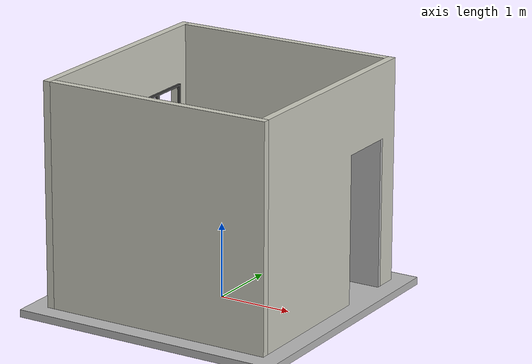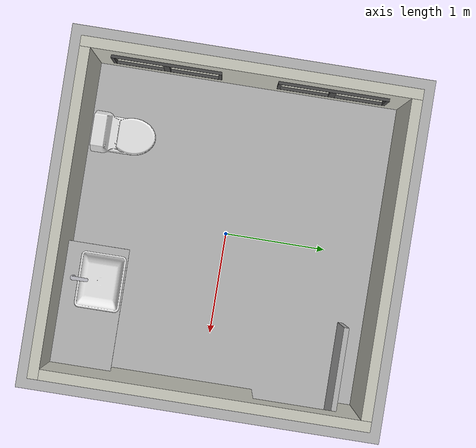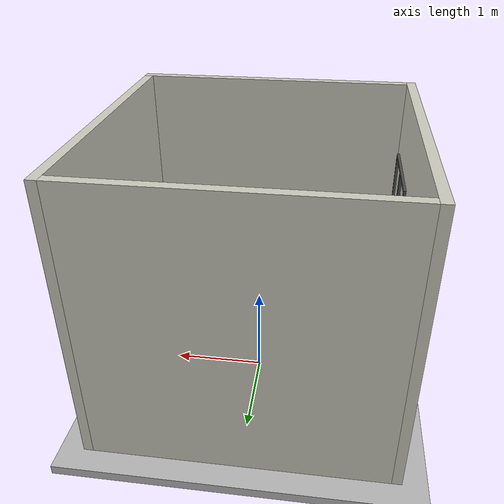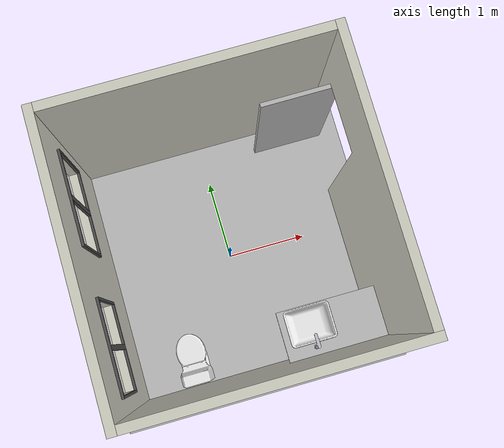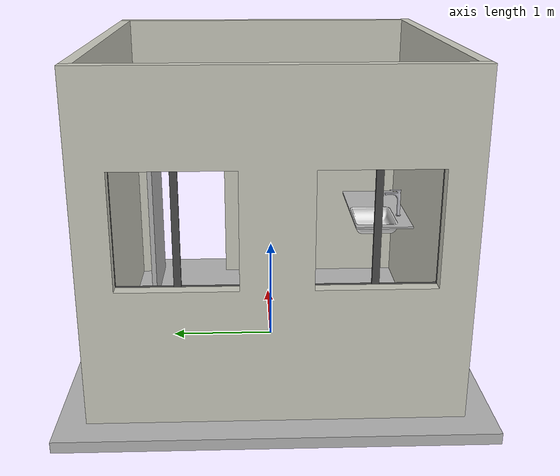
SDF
<sdf version="1.7">
 <world name="default">
  <plugin name="ros_link_attacher_plugin" filename="libgazebo_ros_link_attacher.so"/>
  <model name="floor">
   <static>1</static>
   <link name="link">
    <visual name="visual4"><geometry><box><size>15 15 0.1</size></box></geometry></visual>
    <collision name="collision4">
     <geometry><box><size>15 15 0.1</size></box></geometry>
     <surface><friction><ode><mu>1</mu><mu2>1</mu2></ode></friction></surface>
    </collision>
   </link>
  </model>
  <model name="ground_plane">
   <static>1</static>
   <link name="link">
    <collision name="collision">
     <geometry><plane><normal>0 0 1</normal><size>100 100</size></plane></geometry>
     <surface><friction><ode><mu>100</mu><mu2>50</mu2></ode></friction></surface>
    </collision>
    <visual name="visual">
     <cast_shadows>0</cast_shadows>
     <geometry><plane><normal>0 0 1</normal><size>100 100</size></plane></geometry>
     <material>
      <script><uri>file://media/materials/scripts/gazebo.material</uri><name>Gazebo/Grey</name></script>
     </material>
    </visual>
   </link>
  </model>
  <model name="cummod">
   <link name="link">
    <inertial>
     <mass>2000</mass>
     <inertia><ixx>1</ixx><ixy>0</ixy><ixz>0</ixz><iyy>1</iyy><iyz>0</iyz><izz>1</izz></inertia>
    </inertial>
    <collision name="colision1">
     <geometry><mesh><uri>model://cummod/meshes/cummod.dae</uri></mesh></geometry>
    </collision>
    <visual name="visual1">
     <cast_shadows>0</cast_shadows>
     <geometry><mesh><uri>model://cummod/meshes/cummod.dae</uri></mesh></geometry>
     <material>
      <script><name>Gazebo/White</name><uri>file://media/materials/scripts/gazebo.material</uri></script>
     </material>
    </visual>
   </link>
   <pose>-0.812974 -1.15199 0.05 -0 1e-06 3.14031</pose>
  </model>
  <physics type="ode">
   <ode>
    <solver>
     <type>quick</type>
     <iters>100</iters>
     <precon_iters>0</precon_iters>
     <sor>1</sor>
     <use_dynamic_moi_rescaling>0</use_dynamic_moi_rescaling>
    </solver>
    <constraints>
     <cfm>0</cfm>
     <erp>0.5</erp>
     <contact_max_correcting_vel>1000</contact_max_correcting_vel>
     <contact_surface_layer>0</contact_surface_layer>
    </constraints>
   </ode>
   <max_step_size>0.001</max_step_size>
   <real_time_factor>1</real_time_factor>
   <real_time_update_rate>1000</real_time_update_rate>
   <gravity>0.000000 0.000000 -9.810000</gravity>
  </physics>
  <gravity>0 0 -9.81</gravity>
  <magnetic_field>6e-06 2.3e-05 -4.2e-05</magnetic_field>
  <atmosphere type="adiabatic"/>
  <scene><ambient>0.4 0.4 0.4 1</ambient><background>0.7 0.7 0.7 1</background><shadows>1</shadows></scene>
  <spherical_coordinates>
   <surface_model>EARTH_WGS84</surface_model>
   <latitude_deg>0</latitude_deg>
   <longitude_deg>0</longitude_deg>
   <elevation>0</elevation>
   <heading_deg>0</heading_deg>
  </spherical_coordinates>
  <model name="artpark_world">
   <link name="wall_front_1">
    <inertial>
     <pose>0.046416 -0.013002 1.59722 0 -0 0</pose>
     <mass>27271.9</mass>
     <inertia>
      <ixx>67396.9</ixx>
      <ixy>814.855</ixy>
      <ixz>-982.378</ixz>
      <iyy>62674.9</iyy>
      <iyz>-178.815</iyz>
      <izz>87208.7</izz>
     </inertia>
    </inertial>
    <collision name="wall_front_1_collision">
     <geometry>
      <mesh>
       <scale>0.001 0.001 0.001</scale>
       <uri>/artpark_workspace/src/GigaRoboticsArtpark/artpark_world_description/meshes/base_link.stl</uri>
      </mesh>
     </geometry>
     <surface><friction><ode><mu>0.2</mu><mu2>0.2</mu2></ode></friction></surface>
    </collision>
    <collision name="wall_front_1_fixed_joint_lump__wall_right_1_collision_1">
     <pose>0 1.55 1.6 0 -0 0</pose>
     <geometry><box><size>3 0.1 3</size></box></geometry>
     <surface><friction><ode><mu>0.2</mu><mu2>0.2</mu2></ode></friction></surface>
     <origin rpy="0 0 0" xyz="1.5 -.05 0"/>
    </collision>
    <collision name="wall_front_1_fixed_joint_lump__wall_back_1_collision_2">
     <geometry>
      <mesh>
       <scale>0.001 0.001 0.001</scale>
       <uri>/artpark_workspace/src/GigaRoboticsArtpark/artpark_world_description/meshes/wall_back_1.stl</uri>
      </mesh>
     </geometry>
     <surface><friction><ode><mu>0.2</mu><mu2>0.2</mu2></ode></friction></surface>
    </collision>
    <collision name="wall_front_1_fixed_joint_lump__door_1_1_collision_3">
     <pose>1.15 1.275 1.1 0 -0 0</pose>
     <geometry><box><size>0.9 0.05 2</size></box></geometry>
     <surface><friction><ode><mu>0.2</mu><mu2>0.2</mu2></ode></friction></surface>
     <origin rpy="0 0 0" xyz="1.5 -.05 0"/>
    </collision>
    <collision name="wall_front_1_fixed_joint_lump__wall_left_1_collision_4">
     <pose>0.05 -1.55 1.6 0 -0 0</pose>
     <geometry><box><size>3.1 0.1 3</size></box></geometry>
     <surface><friction><ode><mu>0.2</mu><mu2>0.2</mu2></ode></friction></surface>
     <origin rpy="0 0 0" xyz="1.55 0.05 0"/>
    </collision>
    <collision name="wall_front_1_fixed_joint_lump__counter_1_collision_5">
     <geometry>
      <mesh>
       <scale>0.001 0.001 0.001</scale>
       <uri>/artpark_workspace/src/GigaRoboticsArtpark/artpark_world_description/meshes/counter_1.stl</uri>
      </mesh>
     </geometry>
     <surface><friction><ode><mu>0.2</mu><mu2>0.2</mu2></ode></friction></surface>
    </collision>
    <collision name="wall_front_1_fixed_joint_lump__sink_1_collision_6">
     <geometry>
      <mesh>
       <scale>0.001 0.001 0.001</scale>
       <uri>/artpark_workspace/src/GigaRoboticsArtpark/artpark_world_description/meshes/sink_1.stl</uri>
      </mesh>
     </geometry>
     <surface><friction><ode><mu>0.2</mu><mu2>0.2</mu2></ode></friction></surface>
    </collision>
    <collision name="wall_front_1_fixed_joint_lump__tap_1_collision_7">
     <geometry>
      <mesh>
       <scale>0.001 0.001 0.001</scale>
       <uri>/artpark_workspace/src/GigaRoboticsArtpark/artpark_world_description/meshes/tap_1.stl</uri>
      </mesh>
     </geometry>
     <surface><friction><ode><mu>0.2</mu><mu2>0.2</mu2></ode></friction></surface>
    </collision>
    <collision name="wall_front_1_fixed_joint_lump__window_frame1_1_collision_8">
     <geometry>
      <mesh>
       <scale>0.001 0.001 0.001</scale>
       <uri>/artpark_workspace/src/GigaRoboticsArtpark/artpark_world_description/meshes/window_frame1_1.stl</uri>
      </mesh>
     </geometry>
     <surface><friction><ode><mu>0.2</mu><mu2>0.2</mu2></ode></friction></surface>
    </collision>
    <collision name="wall_front_1_fixed_joint_lump__window_frame2_1_collision_9">
     <geometry>
      <mesh>
       <scale>0.001 0.001 0.001</scale>
       <uri>/artpark_workspace/src/GigaRoboticsArtpark/artpark_world_description/meshes/window_frame2_1.stl</uri>
      </mesh>
     </geometry>
     <surface><friction><ode><mu>0.2</mu><mu2>0.2</mu2></ode></friction></surface>
    </collision>
    <visual name="wall_front_1_visual">
     <geometry>
      <mesh>
       <scale>0.001 0.001 0.001</scale>
       <uri>/artpark_workspace/src/GigaRoboticsArtpark/artpark_world_description/meshes/base_link.stl</uri>
      </mesh>
     </geometry>
     <material>
      <script><name>Gazebo/PaintedWall</name><uri>file://media/materials/scripts/gazebo.material</uri></script>
     </material>
    </visual>
    <visual name="wall_front_1_fixed_joint_lump__wall_right_1_visual_1">
     <geometry>
      <mesh>
       <scale>0.001 0.001 0.001</scale>
       <uri>/artpark_workspace/src/GigaRoboticsArtpark/artpark_world_description/meshes/wall_right_1.stl</uri>
      </mesh>
     </geometry>
     <material>
      <script><name>Gazebo/PaintedWall</name><uri>file://media/materials/scripts/gazebo.material</uri></script>
     </material>
    </visual>
    <visual name="wall_front_1_fixed_joint_lump__wall_back_1_visual_2">
     <geometry>
      <mesh>
       <scale>0.001 0.001 0.001</scale>
       <uri>/artpark_workspace/src/GigaRoboticsArtpark/artpark_world_description/meshes/wall_back_1.stl</uri>
      </mesh>
     </geometry>
     <material>
      <script><name>Gazebo/PaintedWall</name><uri>file://media/materials/scripts/gazebo.material</uri></script>
     </material>
    </visual>
    <visual name="wall_front_1_fixed_joint_lump__door_1_1_visual_3">
     <geometry>
      <mesh>
       <scale>0.001 0.001 0.001</scale>
       <uri>/artpark_workspace/src/GigaRoboticsArtpark/artpark_world_description/meshes/door_1_1.stl</uri>
      </mesh>
     </geometry>
     <material>
      <script><name>Gazebo/PioneerBody</name><uri>file://media/materials/scripts/gazebo.material</uri></script>
     </material>
    </visual>
    <visual name="wall_front_1_fixed_joint_lump__wall_left_1_visual_4">
     <geometry>
      <mesh>
       <scale>0.001 0.001 0.001</scale>
       <uri>/artpark_workspace/src/GigaRoboticsArtpark/artpark_world_description/meshes/wall_left_1.stl</uri>
      </mesh>
     </geometry>
     <material>
      <script><name>Gazebo/PaintedWall</name><uri>file://media/materials/scripts/gazebo.material</uri></script>
     </material>
    </visual>
    <visual name="wall_front_1_fixed_joint_lump__counter_1_visual_5">
     <geometry>
      <mesh>
       <scale>0.001 0.001 0.001</scale>
       <uri>/artpark_workspace/src/GigaRoboticsArtpark/artpark_world_description/meshes/counter_1.stl</uri>
      </mesh>
     </geometry>
     <material>
      <script><name>Gazebo/Primary</name><uri>file://media/materials/scripts/gazebo.material</uri></script>
     </material>
    </visual>
    <visual name="wall_front_1_fixed_joint_lump__sink_1_visual_6">
     <geometry>
      <mesh>
       <scale>0.001 0.001 0.001</scale>
       <uri>/artpark_workspace/src/GigaRoboticsArtpark/artpark_world_description/meshes/sink_1.stl</uri>
      </mesh>
     </geometry>
     <material>
      <script><name>Gazebo/White</name><uri>file://media/materials/scripts/gazebo.material</uri></script>
     </material>
    </visual>
    <visual name="wall_front_1_fixed_joint_lump__tap_1_visual_7">
     <geometry>
      <mesh>
       <scale>0.001 0.001 0.001</scale>
       <uri>/artpark_workspace/src/GigaRoboticsArtpark/artpark_world_description/meshes/tap_1.stl</uri>
      </mesh>
     </geometry>
     <material>
      <script><name>Gazebo/Silver</name><uri>file://media/materials/scripts/gazebo.material</uri></script>
     </material>
    </visual>
    <visual name="wall_front_1_fixed_joint_lump__window_frame1_1_visual_8">
     <geometry>
      <mesh>
       <scale>0.001 0.001 0.001</scale>
       <uri>/artpark_workspace/src/GigaRoboticsArtpark/artpark_world_description/meshes/window_frame1_1.stl</uri>
      </mesh>
     </geometry>
     <material>
      <script><name>Gazebo/DarkGrey</name><uri>file://media/materials/scripts/gazebo.material</uri></script>
     </material>
    </visual>
    <visual name="wall_front_1_fixed_joint_lump__window_frame2_1_visual_9">
     <geometry>
      <mesh>
       <scale>0.001 0.001 0.001</scale>
       <uri>/artpark_workspace/src/GigaRoboticsArtpark/artpark_world_description/meshes/window_frame2_1.stl</uri>
      </mesh>
     </geometry>
     <material>
      <script><name>Gazebo/DarkGrey</name><uri>file://media/materials/scripts/gazebo.material</uri></script>
     </material>
    </visual>
    <self_collide>1</self_collide>
   </link>
   <static>0</static>
   <plugin name="control" filename="libgazebo_ros_control.so"><robotNamespace>/</robotNamespace></plugin>
   <pose>-0.00225 -0.00117 -0.05 0 -0 -0.000203</pose>
  </model>
  <light name="user_point_light_0" type="point">
   <pose>0.092161 0.019696 1 0 -0 0</pose>
   <diffuse>0.5 0.5 0.5 1</diffuse>
   <specular>0.1 0.1 0.1 1</specular>
   <attenuation>
    <range>20</range>
    <constant>0.5</constant>
    <linear>0.01</linear>
    <quadratic>0.001</quadratic>
   </attenuation>
   <cast_shadows>0</cast_shadows>
   <direction>0 0 -1</direction>
   <spot><inner_angle>0</inner_angle><outer_angle>0</outer_angle><falloff>0</falloff></spot>
  </light>
 </world>
</sdf>
